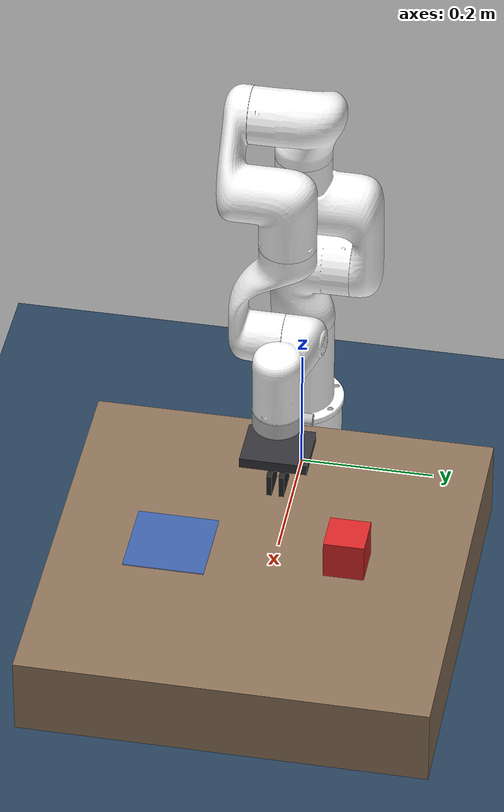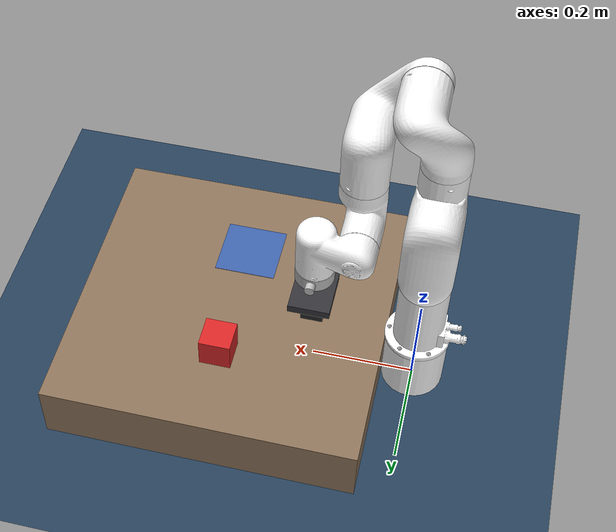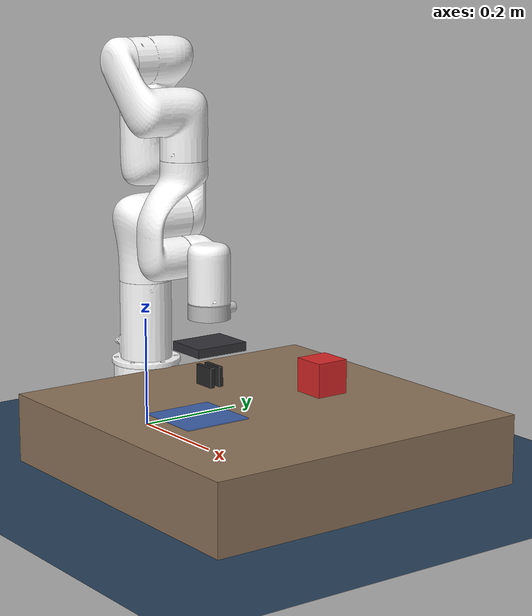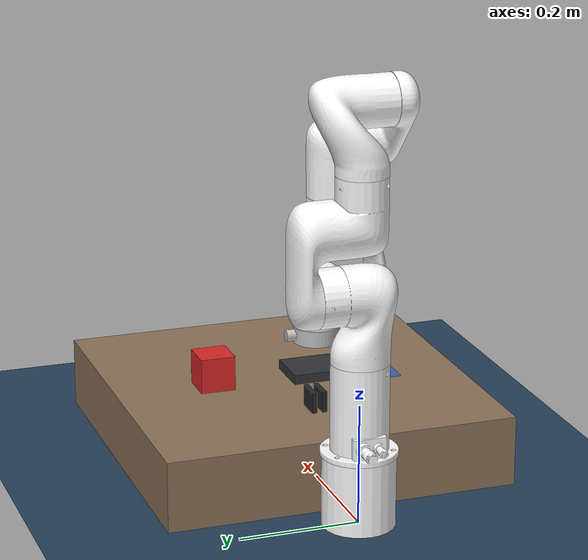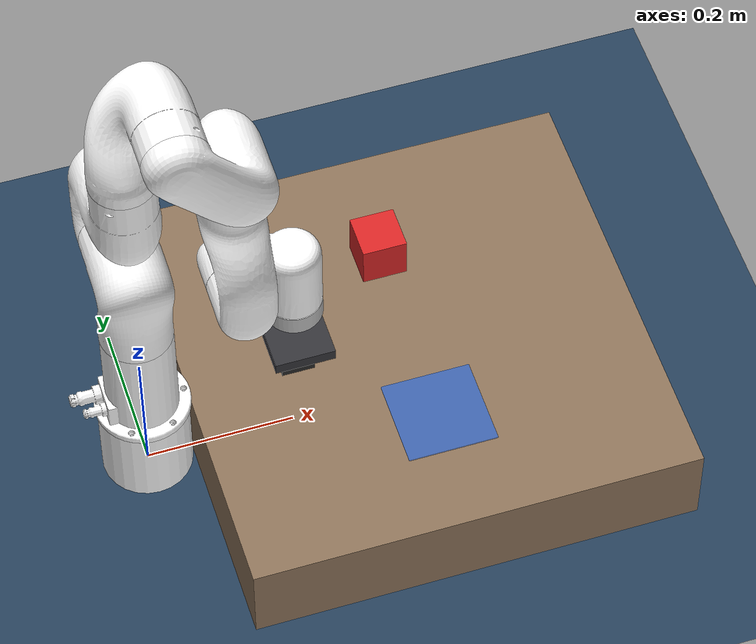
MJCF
<mujoco model="xarm7 pick-place lab">
  <!-- 场景：xArm7 + 桌子 + 待抓方块 + 目标区。xarm7.xml / hand.xml / assets 来自
       MuJoCo Menagerie（Apache-2.0），见同目录 LICENSE 与 README.md。 -->
  <include file="xarm7_lab.xml"/>

  <statistic center="0.35 0 0.25" extent="0.8"/>
  <visual>
    <headlight diffuse="0.6 0.6 0.6" ambient="0.35 0.35 0.35" specular="0 0 0"/>
    <global azimuth="140" elevation="-22" offwidth="1280" offheight="720"/>
  </visual>

  <asset>
    <texture type="skybox" builtin="gradient" rgb1="0.3 0.5 0.7" rgb2="0 0 0" width="512" height="3072"/>
    <texture type="2d" name="groundplane" builtin="checker" mark="edge" rgb1="0.2 0.3 0.4" rgb2="0.1 0.2 0.3"
      markrgb="0.8 0.8 0.8" width="300" height="300"/>
    <material name="groundplane" texture="groundplane" texuniform="true" texrepeat="5 5" reflectance="0.2"/>
    <material name="cube_mat" rgba="0.85 0.15 0.15 1"/>
    <material name="target_mat" rgba="0.15 0.4 0.85 0.7"/>
  </asset>

  <worldbody>
    <light pos="0 0 1.5" dir="0 0 -1" directional="true"/>
    <geom name="floor" size="0 0 0.05" type="plane" material="groundplane"/>
    <geom type="cylinder" size=".06 .06" pos="0 0 .06" rgba="1 1 1 1"/>

    <!-- 桌面与机械臂底座同高（z=0.12），方便从上方抓取 -->
    <body name="table" pos="0.36 0 0.06">
      <geom name="table_top" type="box" size="0.30 0.30 0.06" rgba="0.55 0.45 0.35 1"/>
    </body>

    <!-- 待抓取方块：6cm 立方体，中心 z=0.15。质量显式设为 50 g（塑料块量级）——
           默认密度 1000 kg/m³ 会给出 216 g，桌面摩擦把它按住后很难被小夹爪带走。 -->
    <body name="cube" pos="0.36 0.13 0.15">
      <freejoint name="cube_free"/>
      <geom name="cube_geom" type="box" size="0.03 0.03 0.03" material="cube_mat"
            friction="1.0 0.05 0.001" mass="0.05"/>
    </body>

    <!-- 目标区：桌面上的标记板（不参与碰撞） -->
    <body name="target" pos="0.36 -0.13 0.121">
      <geom name="target_geom" type="box" size="0.06 0.06 0.001" material="target_mat"
            contype="0" conaffinity="0"/>
    </body>
  </worldbody>

</mujoco>

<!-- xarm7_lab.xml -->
<mujoco model="xarm7">
  <compiler angle="radian" autolimits="true" meshdir="assets"/>

  <option integrator="implicitfast"/>

  <asset>
    <material name="white" rgba="1 1 1 1"/>
    <material name="gray" rgba="0.753 0.753 0.753 1"/>
    <material name="black" rgba="0.149 0.149 0.149 1"/>

    <mesh file="link_base.stl"/>
    <mesh file="link1.stl"/>
    <mesh file="link2.stl"/>
    <mesh file="link3.stl"/>
    <mesh file="link4.stl"/>
    <mesh file="link5.stl"/>
    <mesh file="link6.stl"/>
    <mesh file="link7.stl"/>
    <mesh file="end_tool.stl"/>
    <mesh file="base_link.stl"/>
    <mesh file="left_outer_knuckle.stl"/>
    <mesh file="left_finger.stl"/>
    <mesh file="left_inner_knuckle.stl"/>
    <mesh file="right_outer_knuckle.stl"/>
    <mesh file="right_finger.stl"/>
    <mesh file="right_inner_knuckle.stl"/>
  </asset>

  <default>
    <default class="xarm7">
      <geom type="mesh" material="white"/>
      <joint axis="0 0 1" armature="0.1" range="-6.28319 6.28319" frictionloss="1"/>
      <general biastype="affine" ctrlrange="-6.28319 6.28319"/>
      <default class="size1">
        <joint damping="10"/>
        <general gainprm="1500" biasprm="0 -1500 -150" forcerange="-50 50"/>
      </default>
      <default class="size2">
        <joint damping="5"/>
        <general gainprm="1000" biasprm="0 -1000 -100" forcerange="-30 30"/>
      </default>
      <default class="size3">
        <joint damping="2"/>
        <general gainprm="800" biasprm="0 -800 -80" forcerange="-20 20"/>
      </default>
      <default class="spring_link">
        <joint range="0 0.85" stiffness="0.05" springref="2.62" damping="0.00125"/>
      </default>
      <default class="driver">
        <joint range="0 0.85" armature="0.005" damping="0.1" solreflimit="0.005 1"/>
      </default>
      <default class="follower">
        <joint range="0 0.85" solreflimit="0.005 1"/>
      </default>
      <default class="visual">
        <geom type="mesh" contype="0" conaffinity="0" group="2"/>
      </default>
      <default class="collision">
        <geom type="mesh" group="3"/>
        <default class="pad_box1">
          <geom type="box" friction="0.7" solimp="0.95 0.99 0.001" solref="0.004 1" mass="0" priority="1"
            size="0.015 0.002 0.0095" rgba="0.0 0.1 0.7 1"/>
        </default>
        <default class="pad_box2">
          <geom type="box" friction="0.6" solimp="0.95 0.99 0.001" solref="0.004 1" mass="0" priority="1"
            size="0.015 0.002 0.0095" rgba="0.0 0.5 0.5 1"/>
        </default>
      </default>
      <site size="0.001" rgba="1 0 0 1" group="4"/>
    </default>
  </default>

  <worldbody>
    <body name="link_base" pos="0 0 .12" childclass="xarm7">
      <inertial pos="-0.021131 -0.0016302 0.056488" quat="0.696843 0.20176 0.10388 0.680376" mass="0.88556"
        diaginertia="0.00382023 0.00335282 0.00167725"/>
      <geom mesh="link_base"/>
      <body name="link1" pos="0 0 0.267">
        <inertial pos="-0.0002 0.02905 -0.01233" quat="0.978953 -0.202769 -0.00441617 -0.0227264" mass="2.382"
          diaginertia="0.00569127 0.00533384 0.00293865"/>
        <joint name="joint1" class="size1"/>
        <geom mesh="link1"/>
        <body name="link2" quat="1 -1 0 0">
          <inertial pos="0.00022 -0.12856 0.01735" quat="0.50198 0.86483 -0.00778841 0.00483285" mass="1.869"
            diaginertia="0.00959898 0.00937717 0.00201315"/>
          <joint name="joint2" range="-2.059 2.0944" class="size1"/>
          <geom mesh="link2"/>
          <body name="link3" pos="0 -0.293 0" quat="1 1 0 0">
            <inertial pos="0.0466 -0.02463 -0.00768" quat="0.913819 0.289775 0.281481 -0.0416455" mass="1.6383"
              diaginertia="0.00351721 0.00294089 0.00195868"/>
            <joint name="joint3" class="size2"/>
            <geom mesh="link3"/>
            <body name="link4" pos="0.0525 0 0" quat="1 1 0 0">
              <inertial pos="0.07047 -0.11575 0.012" quat="0.422108 0.852026 -0.126025 0.282832" mass="1.7269"
                diaginertia="0.00657137 0.00647948 0.00186763"/>
              <joint name="joint4" range="-0.19198 3.927" class="size2"/>
              <geom mesh="link4"/>
              <body name="link5" pos="0.0775 -0.3425 0" quat="1 1 0 0">
                <inertial pos="-0.00032 0.01604 -0.026" quat="0.999311 -0.0304457 0.000577067 0.0212082" mass="1.3203"
                  diaginertia="0.00534729 0.00499076 0.0013489"/>
                <joint name="joint5" class="size2"/>
                <geom mesh="link5"/>
                <body name="link6" quat="1 1 0 0">
                  <inertial pos="0.06469 0.03278 0.02141" quat="-0.217672 0.772419 0.16258 0.574069" mass="1.325"
                    diaginertia="0.00245421 0.00221646 0.00107273"/>
                  <joint name="joint6" range="-1.69297 3.14159" class="size3"/>
                  <geom mesh="link6"/>
                  <body name="link7" pos="0.076 0.097 0" quat="1 -1 0 0">
                    <inertial pos="0 -0.00677 -0.01098" quat="0.487612 0.512088 -0.512088 0.487612" mass="0.17"
                      diaginertia="0.000132176 9.3e-05 5.85236e-05"/>
                    <joint name="joint7" class="size3"/>
                    <geom material="gray" mesh="end_tool" contype="0" conaffinity="0" group="2"/>
                    <!-- ==== lab parallel-jaw hand (replaces the linkage gripper) ====
                         两个滑动关节沿 ±y 平移，位置执行器带力限制：既不会被物体反驱，
                         夹持力也有上限（30 N/指）。grip_* 的 ctrl = 目标半间隙 - 0.005 m。 -->
                    <body name="lab_hand">
                      <geom name="hand_base" type="box" size="0.04 0.05 0.008" pos="0 0 0.05"
                            rgba="0.2 0.2 0.22 1" mass="0.4"/>
                      <site name="link_tcp" pos="0 0 0.105" size="0.005" rgba="0 1 0 1" group="4"/>
                      <body name="finger_left" pos="0 0.009 0.105">
                        <joint name="grip_left" type="slide" axis="0 1 0" range="0 0.05" damping="2"/>
                        <geom name="finger_left_pad" type="box" size="0.022 0.004 0.020"
                              friction="1.2 0.05 0.001" mass="0.15" rgba="0.15 0.15 0.15 1"/>
                      </body>
                      <body name="finger_right" pos="0 -0.009 0.105">
                        <joint name="grip_right" type="slide" axis="0 -1 0" range="0 0.05" damping="2"/>
                        <geom name="finger_right_pad" type="box" size="0.022 0.004 0.020"
                              friction="1.2 0.05 0.001" mass="0.15" rgba="0.15 0.15 0.15 1"/>
                      </body>
                    </body>
                  </body>
                </body>
              </body>
            </body>
          </body>
        </body>
      </body>
    </body>
  </worldbody>

  <actuator>
    <general name="act1" joint="joint1" class="size1"/>
    <general name="act2" joint="joint2" class="size1" ctrlrange="-2.059 2.0944"/>
    <general name="act3" joint="joint3" class="size2"/>
    <general name="act4" joint="joint4" class="size2" ctrlrange="-0.19198 3.927"/>
    <general name="act5" joint="joint5" class="size2"/>
    <general name="act6" joint="joint6" class="size3" ctrlrange="-1.69297 3.14159"/>
    <general name="act7" joint="joint7" class="size3"/>
    <position name="grip_left" joint="grip_left" kp="900" kv="40" forcerange="-30 30"/>
    <position name="grip_right" joint="grip_right" kp="900" kv="40" forcerange="-30 30"/>
  </actuator>

  <keyframe>
    <key name="home" qpos="0 -.247 0 .909 0 1.15644 0 0 0 0 0 0 0" ctrl="0 -.247 0 .909 0 1.15644 0 0"/>
  </keyframe>
</mujoco>
